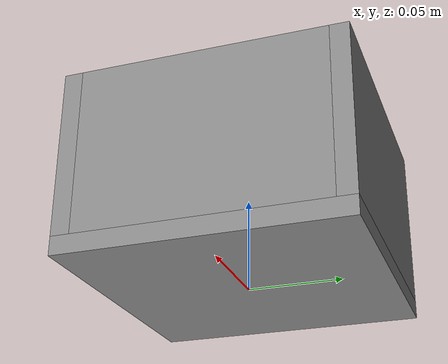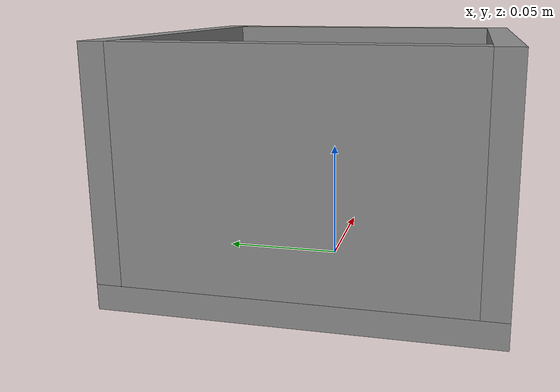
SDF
<?xml version="1.0" ?>
<sdf version="1.10">
  <model name="bin">
    <static>true</static>

    <!-- Floor: 0.15 x 0.15 x 0.010m, center at z=0.005 -->
    <link name="floor">
      <pose>0 0 0.005 0 0 0</pose>
      <collision name="col"><geometry><box><size>0.15 0.15 0.010</size></box></geometry></collision>
      <visual name="vis">
        <geometry><box><size>0.15 0.15 0.010</size></box></geometry>
        <material><ambient>0.40 0.40 0.40 1</ambient><diffuse>0.55 0.55 0.55 1</diffuse></material>
      </visual>
    </link>

    <!-- Front wall (-Y): 0.15 x 0.010 x 0.090m, bottom at z=0.010 -->
    <link name="wall_front">
      <pose>0 -0.070 0.055 0 0 0</pose>
      <collision name="col"><geometry><box><size>0.15 0.010 0.090</size></box></geometry></collision>
      <visual name="vis">
        <geometry><box><size>0.15 0.010 0.090</size></box></geometry>
        <material><ambient>0.40 0.40 0.40 1</ambient><diffuse>0.55 0.55 0.55 1</diffuse></material>
      </visual>
    </link>

    <!-- Back wall (+Y) -->
    <link name="wall_back">
      <pose>0 0.070 0.055 0 0 0</pose>
      <collision name="col"><geometry><box><size>0.15 0.010 0.090</size></box></geometry></collision>
      <visual name="vis">
        <geometry><box><size>0.15 0.010 0.090</size></box></geometry>
        <material><ambient>0.40 0.40 0.40 1</ambient><diffuse>0.55 0.55 0.55 1</diffuse></material>
      </visual>
    </link>

    <!-- Left wall (-X): 0.010 x 0.130 x 0.090m (fits between front/back walls) -->
    <link name="wall_left">
      <pose>-0.070 0 0.055 0 0 0</pose>
      <collision name="col"><geometry><box><size>0.010 0.130 0.090</size></box></geometry></collision>
      <visual name="vis">
        <geometry><box><size>0.010 0.130 0.090</size></box></geometry>
        <material><ambient>0.40 0.40 0.40 1</ambient><diffuse>0.55 0.55 0.55 1</diffuse></material>
      </visual>
    </link>

    <!-- Right wall (+X) -->
    <link name="wall_right">
      <pose>0.070 0 0.055 0 0 0</pose>
      <collision name="col"><geometry><box><size>0.010 0.130 0.090</size></box></geometry></collision>
      <visual name="vis">
        <geometry><box><size>0.010 0.130 0.090</size></box></geometry>
        <material><ambient>0.40 0.40 0.40 1</ambient><diffuse>0.55 0.55 0.55 1</diffuse></material>
      </visual>
    </link>

  </model>
</sdf>
